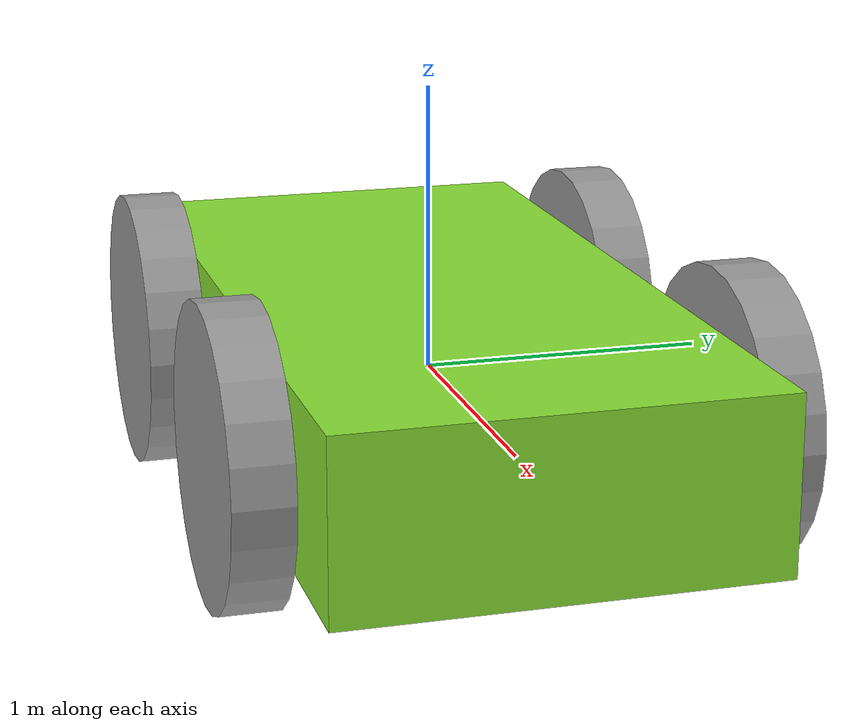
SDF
<?xml version='1.0'?>
<sdf version='1.7'>
  <model name='car_robot'>
    <link name='link_2'>
      <inertial>
        <mass>1</mass>
        <inertia>
          <ixx>0.145833</ixx>
          <ixy>0</ixy>
          <ixz>0</ixz>
          <iyy>0.145833</iyy>
          <iyz>0</iyz>
          <izz>0.125</izz>
        </inertia>
        <pose>0 0 0 0 -0 0</pose>
      </inertial>
      <pose>-0.75 -0.853048 0 1.5707 -0 0</pose>
      <gravity>1</gravity>
      <self_collide>0</self_collide>
      <kinematic>0</kinematic>
      <enable_wind>0</enable_wind>
      <visual name='visual'>
        <pose>0 0 0 0 -0 0</pose>
        <geometry>
          <cylinder>
            <radius>0.5</radius>
            <length>0.2</length>
          </cylinder>
        </geometry>
        <material>
          <lighting>1</lighting>
          <script>
            <uri>file://media/materials/scripts/gazebo.material</uri>
            <name>Gazebo/Grey</name>
          </script>
          <shader type='pixel'>
            <normal_map>__default__</normal_map>
          </shader>
          <ambient>0 0 0 1</ambient>
          <diffuse>0.18 0.204 0.212 1</diffuse>
          <specular>0.01 0.01 0.01 1</specular>
          <emissive>0 0 0 1</emissive>
        </material>
        <transparency>0</transparency>
        <cast_shadows>1</cast_shadows>
      </visual>
      <collision name='collision'>
        <laser_retro>0</laser_retro>
        <max_contacts>10</max_contacts>
        <pose>0 0 0 0 -0 0</pose>
        <geometry>
          <cylinder>
            <radius>0.5</radius>
            <length>0.2</length>
          </cylinder>
        </geometry>
        <surface>
          <friction>
            <ode>
              <mu>1</mu>
              <mu2>1</mu2>
              <fdir1>0 0 0</fdir1>
              <slip1>0</slip1>
              <slip2>0</slip2>
            </ode>
            <torsional>
              <coefficient>1</coefficient>
              <patch_radius>0</patch_radius>
              <surface_radius>0</surface_radius>
              <use_patch_radius>1</use_patch_radius>
              <ode>
                <slip>0</slip>
              </ode>
            </torsional>
          </friction>
          <bounce>
            <restitution_coefficient>0</restitution_coefficient>
            <threshold>1e+06</threshold>
          </bounce>
          <contact>
            <collide_without_contact>0</collide_without_contact>
            <collide_without_contact_bitmask>1</collide_without_contact_bitmask>
            <collide_bitmask>1</collide_bitmask>
            <ode>
              <soft_cfm>0</soft_cfm>
              <soft_erp>0.2</soft_erp>
              <kp>1e+13</kp>
              <kd>1</kd>
              <max_vel>0.01</max_vel>
              <min_depth>0</min_depth>
            </ode>
            <bullet>
              <split_impulse>1</split_impulse>
              <split_impulse_penetration_threshold>-0.01</split_impulse_penetration_threshold>
              <soft_cfm>0</soft_cfm>
              <soft_erp>0.2</soft_erp>
              <kp>1e+13</kp>
              <kd>1</kd>
            </bullet>
          </contact>
        </surface>
      </collision>
    </link>
    <link name='link_2_clone'>
      <inertial>
        <mass>1</mass>
        <inertia>
          <ixx>0.145833</ixx>
          <ixy>0</ixy>
          <ixz>0</ixz>
          <iyy>0.145833</iyy>
          <iyz>0</iyz>
          <izz>0.125</izz>
        </inertia>
        <pose>0 0 0 0 -0 0</pose>
      </inertial>
      <pose>0.75 -0.853048 0 1.5707 -0 0</pose>
      <gravity>1</gravity>
      <self_collide>0</self_collide>
      <kinematic>0</kinematic>
      <enable_wind>0</enable_wind>
      <visual name='visual'>
        <pose>0 0 0 0 -0 0</pose>
        <geometry>
          <cylinder>
            <radius>0.5</radius>
            <length>0.2</length>
          </cylinder>
        </geometry>
        <material>
          <lighting>1</lighting>
          <script>
            <uri>file://media/materials/scripts/gazebo.material</uri>
            <name>Gazebo/Grey</name>
          </script>
          <shader type='pixel'>
            <normal_map>__default__</normal_map>
          </shader>
          <ambient>0 0 0 1</ambient>
          <diffuse>0.18 0.204 0.212 1</diffuse>
          <specular>0.01 0.01 0.01 1</specular>
          <emissive>0 0 0 1</emissive>
        </material>
        <transparency>0</transparency>
        <cast_shadows>1</cast_shadows>
      </visual>
      <collision name='collision'>
        <laser_retro>0</laser_retro>
        <max_contacts>10</max_contacts>
        <pose>0 0 0 0 -0 0</pose>
        <geometry>
          <cylinder>
            <radius>0.5</radius>
            <length>0.2</length>
          </cylinder>
        </geometry>
        <surface>
          <friction>
            <ode>
              <mu>1</mu>
              <mu2>1</mu2>
              <fdir1>0 0 0</fdir1>
              <slip1>0</slip1>
              <slip2>0</slip2>
            </ode>
            <torsional>
              <coefficient>1</coefficient>
              <patch_radius>0</patch_radius>
              <surface_radius>0</surface_radius>
              <use_patch_radius>1</use_patch_radius>
              <ode>
                <slip>0</slip>
              </ode>
            </torsional>
          </friction>
          <bounce>
            <restitution_coefficient>0</restitution_coefficient>
            <threshold>1e+06</threshold>
          </bounce>
          <contact>
            <collide_without_contact>0</collide_without_contact>
            <collide_without_contact_bitmask>1</collide_without_contact_bitmask>
            <collide_bitmask>1</collide_bitmask>
            <ode>
              <soft_cfm>0</soft_cfm>
              <soft_erp>0.2</soft_erp>
              <kp>1e+13</kp>
              <kd>1</kd>
              <max_vel>0.01</max_vel>
              <min_depth>0</min_depth>
            </ode>
            <bullet>
              <split_impulse>1</split_impulse>
              <split_impulse_penetration_threshold>-0.01</split_impulse_penetration_threshold>
              <soft_cfm>0</soft_cfm>
              <soft_erp>0.2</soft_erp>
              <kp>1e+13</kp>
              <kd>1</kd>
            </bullet>
          </contact>
        </surface>
      </collision>
    </link>
    <link name='link_2_clone_0'>
      <inertial>
        <mass>1</mass>
        <inertia>
          <ixx>0.145833</ixx>
          <ixy>0</ixy>
          <ixz>0</ixz>
          <iyy>0.145833</iyy>
          <iyz>0</iyz>
          <izz>0.125</izz>
        </inertia>
        <pose>0 0 0 0 -0 0</pose>
      </inertial>
      <pose>-0.75 0.847048 0 1.5707 -0 0</pose>
      <gravity>1</gravity>
      <self_collide>0</self_collide>
      <kinematic>0</kinematic>
      <enable_wind>0</enable_wind>
      <visual name='visual'>
        <pose>0 0 0 0 -0 0</pose>
        <geometry>
          <cylinder>
            <radius>0.5</radius>
            <length>0.2</length>
          </cylinder>
        </geometry>
        <material>
          <lighting>1</lighting>
          <script>
            <uri>file://media/materials/scripts/gazebo.material</uri>
            <name>Gazebo/Grey</name>
          </script>
          <shader type='pixel'>
            <normal_map>__default__</normal_map>
          </shader>
          <ambient>0 0 0 1</ambient>
          <diffuse>0.18 0.204 0.212 1</diffuse>
          <specular>0.01 0.01 0.01 1</specular>
          <emissive>0 0 0 1</emissive>
        </material>
        <transparency>0</transparency>
        <cast_shadows>1</cast_shadows>
      </visual>
      <collision name='collision'>
        <laser_retro>0</laser_retro>
        <max_contacts>10</max_contacts>
        <pose>0 0 0 0 -0 0</pose>
        <geometry>
          <cylinder>
            <radius>0.5</radius>
            <length>0.2</length>
          </cylinder>
        </geometry>
        <surface>
          <friction>
            <ode>
              <mu>1</mu>
              <mu2>1</mu2>
              <fdir1>0 0 0</fdir1>
              <slip1>0</slip1>
              <slip2>0</slip2>
            </ode>
            <torsional>
              <coefficient>1</coefficient>
              <patch_radius>0</patch_radius>
              <surface_radius>0</surface_radius>
              <use_patch_radius>1</use_patch_radius>
              <ode>
                <slip>0</slip>
              </ode>
            </torsional>
          </friction>
          <bounce>
            <restitution_coefficient>0</restitution_coefficient>
            <threshold>1e+06</threshold>
          </bounce>
          <contact>
            <collide_without_contact>0</collide_without_contact>
            <collide_without_contact_bitmask>1</collide_without_contact_bitmask>
            <collide_bitmask>1</collide_bitmask>
            <ode>
              <soft_cfm>0</soft_cfm>
              <soft_erp>0.2</soft_erp>
              <kp>1e+13</kp>
              <kd>1</kd>
              <max_vel>0.01</max_vel>
              <min_depth>0</min_depth>
            </ode>
            <bullet>
              <split_impulse>1</split_impulse>
              <split_impulse_penetration_threshold>-0.01</split_impulse_penetration_threshold>
              <soft_cfm>0</soft_cfm>
              <soft_erp>0.2</soft_erp>
              <kp>1e+13</kp>
              <kd>1</kd>
            </bullet>
          </contact>
        </surface>
      </collision>
    </link>
    <link name='link_2_clone_1'>
      <inertial>
        <mass>1</mass>
        <inertia>
          <ixx>0.145833</ixx>
          <ixy>0</ixy>
          <ixz>0</ixz>
          <iyy>0.145833</iyy>
          <iyz>0</iyz>
          <izz>0.125</izz>
        </inertia>
        <pose>0 0 0 0 -0 0</pose>
      </inertial>
      <pose>0.75 0.847048 0 1.5707 -0 0</pose>
      <gravity>1</gravity>
      <self_collide>0</self_collide>
      <kinematic>0</kinematic>
      <enable_wind>0</enable_wind>
      <visual name='visual'>
        <pose>0 0 0 0 -0 0</pose>
        <geometry>
          <cylinder>
            <radius>0.5</radius>
            <length>0.2</length>
          </cylinder>
        </geometry>
        <material>
          <lighting>1</lighting>
          <script>
            <uri>file://media/materials/scripts/gazebo.material</uri>
            <name>Gazebo/Grey</name>
          </script>
          <shader type='pixel'>
            <normal_map>__default__</normal_map>
          </shader>
          <ambient>0 0 0 1</ambient>
          <diffuse>0.18 0.204 0.212 1</diffuse>
          <specular>0.01 0.01 0.01 1</specular>
          <emissive>0 0 0 1</emissive>
        </material>
        <transparency>0</transparency>
        <cast_shadows>1</cast_shadows>
      </visual>
      <collision name='collision'>
        <laser_retro>0</laser_retro>
        <max_contacts>10</max_contacts>
        <pose>0 0 0 0 -0 0</pose>
        <geometry>
          <cylinder>
            <radius>0.5</radius>
            <length>0.2</length>
          </cylinder>
        </geometry>
        <surface>
          <friction>
            <ode>
              <mu>1</mu>
              <mu2>1</mu2>
              <fdir1>0 0 0</fdir1>
              <slip1>0</slip1>
              <slip2>0</slip2>
            </ode>
            <torsional>
              <coefficient>1</coefficient>
              <patch_radius>0</patch_radius>
              <surface_radius>0</surface_radius>
              <use_patch_radius>1</use_patch_radius>
              <ode>
                <slip>0</slip>
              </ode>
            </torsional>
          </friction>
          <bounce>
            <restitution_coefficient>0</restitution_coefficient>
            <threshold>1e+06</threshold>
          </bounce>
          <contact>
            <collide_without_contact>0</collide_without_contact>
            <collide_without_contact_bitmask>1</collide_without_contact_bitmask>
            <collide_bitmask>1</collide_bitmask>
            <ode>
              <soft_cfm>0</soft_cfm>
              <soft_erp>0.2</soft_erp>
              <kp>1e+13</kp>
              <kd>1</kd>
              <max_vel>0.01</max_vel>
              <min_depth>0</min_depth>
            </ode>
            <bullet>
              <split_impulse>1</split_impulse>
              <split_impulse_penetration_threshold>-0.01</split_impulse_penetration_threshold>
              <soft_cfm>0</soft_cfm>
              <soft_erp>0.2</soft_erp>
              <kp>1e+13</kp>
              <kd>1</kd>
            </bullet>
          </contact>
        </surface>
      </collision>
    </link>
    <link name='link_5'>
      <inertial>
        <mass>1</mass>
        <inertia>
          <ixx>0.166667</ixx>
          <ixy>0</ixy>
          <ixz>0</ixz>
          <iyy>0.166667</iyy>
          <iyz>0</iyz>
          <izz>0.166667</izz>
        </inertia>
        <pose>0 0 0 0 -0 0</pose>
      </inertial>
      <pose>0 0.012 0 0 -0 0</pose>
      <gravity>1</gravity>
      <self_collide>0</self_collide>
      <kinematic>0</kinematic>
      <enable_wind>0</enable_wind>
      <visual name='visual'>
        <pose>0 0 0 0 -0 0</pose>
        <geometry>
          <box>
            <size>3 1.47 0.6</size>
          </box>
        </geometry>
        <material>
          <lighting>1</lighting>
          <script>
            <uri>file://media/materials/scripts/gazebo.material</uri>
            <name>Gazebo/Grey</name>
          </script>
          <shader type='pixel'>
            <normal_map>__default__</normal_map>
          </shader>
          <ambient>0.306 0.604 0.024 1</ambient>
          <diffuse>0.541 0.886 0.204 1</diffuse>
          <specular>0.01 0.01 0.01 1</specular>
          <emissive>0 0 0 1</emissive>
        </material>
        <transparency>0</transparency>
        <cast_shadows>1</cast_shadows>
      </visual>
      <collision name='collision'>
        <laser_retro>0</laser_retro>
        <max_contacts>10</max_contacts>
        <pose>0 0 0 0 -0 0</pose>
        <geometry>
          <box>
            <size>3 1.5 0.6</size>
          </box>
        </geometry>
        <surface>
          <friction>
            <ode>
              <mu>1</mu>
              <mu2>1</mu2>
              <fdir1>0 0 0</fdir1>
              <slip1>0</slip1>
              <slip2>0</slip2>
            </ode>
            <torsional>
              <coefficient>1</coefficient>
              <patch_radius>0</patch_radius>
              <surface_radius>0</surface_radius>
              <use_patch_radius>1</use_patch_radius>
              <ode>
                <slip>0</slip>
              </ode>
            </torsional>
          </friction>
          <bounce>
            <restitution_coefficient>0</restitution_coefficient>
            <threshold>1e+06</threshold>
          </bounce>
          <contact>
            <collide_without_contact>0</collide_without_contact>
            <collide_without_contact_bitmask>1</collide_without_contact_bitmask>
            <collide_bitmask>1</collide_bitmask>
            <ode>
              <soft_cfm>0</soft_cfm>
              <soft_erp>0.2</soft_erp>
              <kp>1e+13</kp>
              <kd>1</kd>
              <max_vel>0.01</max_vel>
              <min_depth>0</min_depth>
            </ode>
            <bullet>
              <split_impulse>1</split_impulse>
              <split_impulse_penetration_threshold>-0.01</split_impulse_penetration_threshold>
              <soft_cfm>0</soft_cfm>
              <soft_erp>0.2</soft_erp>
              <kp>1e+13</kp>
              <kd>1</kd>
            </bullet>
          </contact>
        </surface>
      </collision>
    </link>
    <joint name='link_5_JOINT_10' type='revolute'>
      <parent>link_5</parent>
      <child>link_2</child>
      <pose>0 0 0 0 -0 0</pose>
      <axis>
        <xyz>0 0 1</xyz>
        <limit>
          <lower>-1.79769e+308</lower>
          <upper>1.79769e+308</upper>
          <effort>-1</effort>
          <velocity>-1</velocity>
        </limit>
        <dynamics>
          <spring_reference>0</spring_reference>
          <spring_stiffness>0</spring_stiffness>
          <damping>0</damping>
        </dynamics>
      </axis>
      <physics>
        <ode>
          <limit>
            <cfm>0</cfm>
            <erp>0.2</erp>
          </limit>
          <suspension>
            <cfm>0</cfm>
            <erp>0.2</erp>
          </suspension>
        </ode>
      </physics>
    </joint>
    <joint name='link_5_JOINT_11' type='revolute'>
      <parent>link_5</parent>
      <child>link_2_clone</child>
      <pose>0 0 0 0 -0 0</pose>
      <axis>
        <xyz>0 0 1</xyz>
        <limit>
          <lower>-1.79769e+308</lower>
          <upper>1.79769e+308</upper>
          <effort>-1</effort>
          <velocity>-1</velocity>
        </limit>
        <dynamics>
          <spring_reference>0</spring_reference>
          <spring_stiffness>0</spring_stiffness>
          <damping>0</damping>
        </dynamics>
      </axis>
      <physics>
        <ode>
          <limit>
            <cfm>0</cfm>
            <erp>0.2</erp>
          </limit>
          <suspension>
            <cfm>0</cfm>
            <erp>0.2</erp>
          </suspension>
        </ode>
      </physics>
    </joint>
    <joint name='link_5_JOINT_12' type='revolute'>
      <parent>link_5</parent>
      <child>link_2_clone_0</child>
      <pose>0 0 0 0 -0 0</pose>
      <axis>
        <xyz>0 0 1</xyz>
        <limit>
          <lower>-1.79769e+308</lower>
          <upper>1.79769e+308</upper>
          <effort>-1</effort>
          <velocity>-1</velocity>
        </limit>
        <dynamics>
          <spring_reference>0</spring_reference>
          <spring_stiffness>0</spring_stiffness>
          <damping>0</damping>
        </dynamics>
      </axis>
      <physics>
        <ode>
          <limit>
            <cfm>0</cfm>
            <erp>0.2</erp>
          </limit>
          <suspension>
            <cfm>0</cfm>
            <erp>0.2</erp>
          </suspension>
        </ode>
      </physics>
    </joint>
    <joint name='link_5_JOINT_13' type='revolute'>
      <parent>link_5</parent>
      <child>link_2_clone_1</child>
      <pose>0 0 0 0 -0 0</pose>
      <axis>
        <xyz>0 0 1</xyz>
        <limit>
          <lower>-1.79769e+308</lower>
          <upper>1.79769e+308</upper>
          <effort>-1</effort>
          <velocity>-1</velocity>
        </limit>
        <dynamics>
          <spring_reference>0</spring_reference>
          <spring_stiffness>0</spring_stiffness>
          <damping>0</damping>
        </dynamics>
      </axis>
      <physics>
        <ode>
          <limit>
            <cfm>0</cfm>
            <erp>0.2</erp>
          </limit>
          <suspension>
            <cfm>0</cfm>
            <erp>0.2</erp>
          </suspension>
        </ode>
      </physics>
    </joint>
    <static>0</static>
    <allow_auto_disable>1</allow_auto_disable>
  </model>
</sdf>
